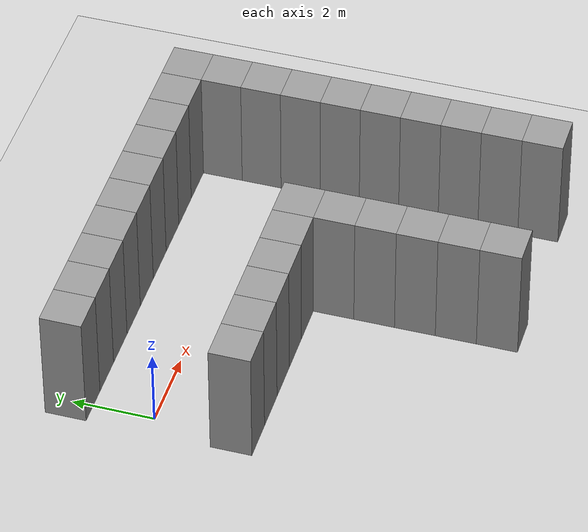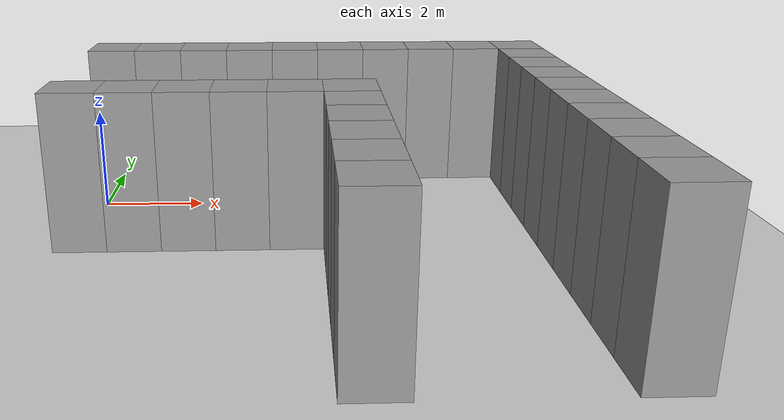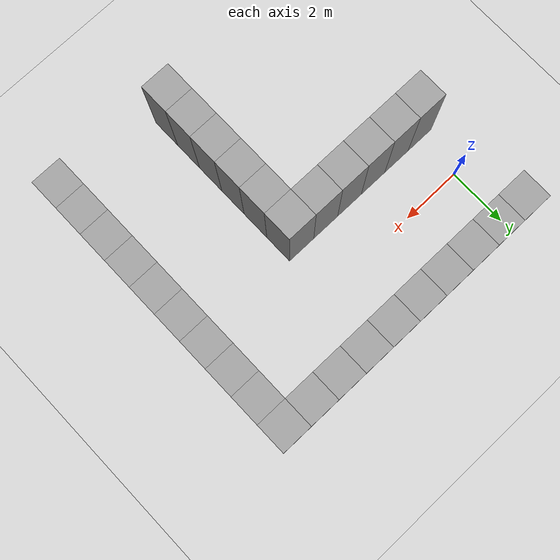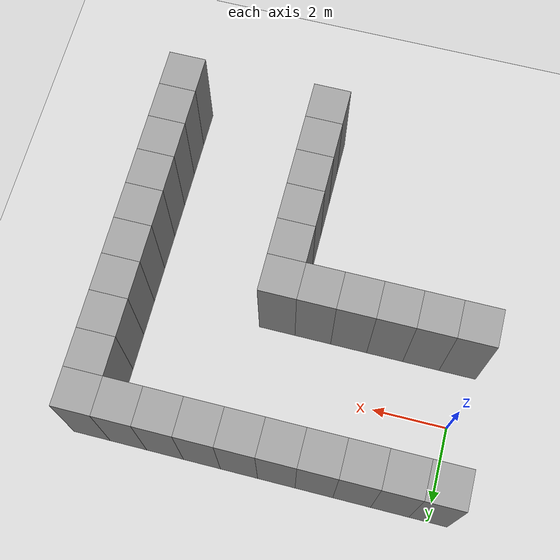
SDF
<sdf version="1.4">
 <world name="default">
  <light name="sun" type="directional">
   <pose>0 0 10 0 -0 0</pose>
   <diffuse>0.8 0.8 0.8 1</diffuse>
   <specular>0.2 0.2 0.2 1</specular>
   <attenuation>
    <range>1000</range>
    <constant>0.9</constant>
    <linear>0.01</linear>
    <quadratic>0.001</quadratic>
   </attenuation>
   <direction>-0 0 -1</direction>
  </light>
  <physics type="ode">
   <ode>
    <solver><type>quick</type><iters>1000</iters><sor>1.3</sor></solver>
    <constraints>
     <cfm>0</cfm>
     <erp>0.2</erp>
     <contact_max_correcting_vel>100</contact_max_correcting_vel>
     <contact_surface_layer>0.001</contact_surface_layer>
    </constraints>
   </ode>
   <max_step_size>0.01</max_step_size>
   <real_time_factor>1</real_time_factor>
   <real_time_update_rate>100</real_time_update_rate>
   <gravity>0 0 -9.8</gravity>
  </physics>
  <scene><ambient>0.4 0.4 0.4 1</ambient><background>0.7 0.7 0.7 1</background><shadows>1</shadows></scene>
  <spherical_coordinates>
   <surface_model>EARTH_WGS84</surface_model>
   <latitude_deg>0</latitude_deg>
   <longitude_deg>0</longitude_deg>
   <elevation>0</elevation>
   <heading_deg>0</heading_deg>
  </spherical_coordinates>
  <model name="ground_plane">
   <static>1</static>
   <link name="link">
    <collision name="collision">
     <geometry><plane><normal>0 0 1</normal><size>100 100</size></plane></geometry>
     <surface><friction><ode><mu>100</mu><mu2>50</mu2></ode></friction></surface>
    </collision>
    <visual name="visual">
     <cast_shadows>0</cast_shadows>
     <geometry><plane><normal>0 0 1</normal><size>100 100</size></plane></geometry>
     <material>
      <script><uri>file://media/materials/scripts/gazebo.material</uri><name>Gazebo/Grey</name></script>
     </material>
    </visual>
    <velocity_decay><linear>0</linear><angular>0</angular></velocity_decay>
   </link>
  </model>
  <model name="grey_box_0">
   <static>1</static>
   <link name="link">
    <pose>0 0 1.5 0 -0 0</pose>
    <collision name="collision"><geometry><box><size>1 1 3</size></box></geometry></collision>
    <visual name="visual">
     <cast_shadows>0</cast_shadows>
     <geometry><box><size>1 1 3</size></box></geometry>
     <material>
      <script>
       <uri>model://grey_box/materials/scripts</uri>
       <uri>model://grey_box/materials/textures</uri>
       <name>vrc/grey_box</name>
      </script>
     </material>
    </visual>
    <velocity_decay><linear>0</linear><angular>0</angular></velocity_decay>
   </link>
   <pose>0 2 0 0 -0 0</pose>
  </model>
  <model name="grey_box_1">
   <static>1</static>
   <link name="link">
    <pose>0 0 1.5 0 -0 0</pose>
    <collision name="collision"><geometry><box><size>1 1 3</size></box></geometry></collision>
    <visual name="visual">
     <cast_shadows>0</cast_shadows>
     <geometry><box><size>1 1 3</size></box></geometry>
     <material>
      <script>
       <uri>model://grey_box/materials/scripts</uri>
       <uri>model://grey_box/materials/textures</uri>
       <name>vrc/grey_box</name>
      </script>
     </material>
    </visual>
    <velocity_decay><linear>0</linear><angular>0</angular></velocity_decay>
   </link>
   <pose>0 -2 0 0 -0 0</pose>
  </model>
  <model name="grey_box_2">
   <static>1</static>
   <link name="link">
    <pose>0 0 1.5 0 -0 0</pose>
    <collision name="collision"><geometry><box><size>1 1 3</size></box></geometry></collision>
    <visual name="visual">
     <cast_shadows>0</cast_shadows>
     <geometry><box><size>1 1 3</size></box></geometry>
     <material>
      <script>
       <uri>model://grey_box/materials/scripts</uri>
       <uri>model://grey_box/materials/textures</uri>
       <name>vrc/grey_box</name>
      </script>
     </material>
    </visual>
    <velocity_decay><linear>0</linear><angular>0</angular></velocity_decay>
   </link>
   <pose>1 2 0 0 -0 0</pose>
  </model>
  <model name="grey_box_3">
   <static>1</static>
   <link name="link">
    <pose>0 0 1.5 0 -0 0</pose>
    <collision name="collision"><geometry><box><size>1 1 3</size></box></geometry></collision>
    <visual name="visual">
     <cast_shadows>0</cast_shadows>
     <geometry><box><size>1 1 3</size></box></geometry>
     <material>
      <script>
       <uri>model://grey_box/materials/scripts</uri>
       <uri>model://grey_box/materials/textures</uri>
       <name>vrc/grey_box</name>
      </script>
     </material>
    </visual>
    <velocity_decay><linear>0</linear><angular>0</angular></velocity_decay>
   </link>
   <pose>1 -2 0 0 -0 0</pose>
  </model>
  <model name="grey_box_4">
   <static>1</static>
   <link name="link">
    <pose>0 0 1.5 0 -0 0</pose>
    <collision name="collision"><geometry><box><size>1 1 3</size></box></geometry></collision>
    <visual name="visual">
     <cast_shadows>0</cast_shadows>
     <geometry><box><size>1 1 3</size></box></geometry>
     <material>
      <script>
       <uri>model://grey_box/materials/scripts</uri>
       <uri>model://grey_box/materials/textures</uri>
       <name>vrc/grey_box</name>
      </script>
     </material>
    </visual>
    <velocity_decay><linear>0</linear><angular>0</angular></velocity_decay>
   </link>
   <pose>2 2 0 0 -0 0</pose>
  </model>
  <model name="grey_box_5">
   <static>1</static>
   <link name="link">
    <pose>0 0 1.5 0 -0 0</pose>
    <collision name="collision"><geometry><box><size>1 1 3</size></box></geometry></collision>
    <visual name="visual">
     <cast_shadows>0</cast_shadows>
     <geometry><box><size>1 1 3</size></box></geometry>
     <material>
      <script>
       <uri>model://grey_box/materials/scripts</uri>
       <uri>model://grey_box/materials/textures</uri>
       <name>vrc/grey_box</name>
      </script>
     </material>
    </visual>
    <velocity_decay><linear>0</linear><angular>0</angular></velocity_decay>
   </link>
   <pose>2 -2 0 0 -0 0</pose>
  </model>
  <model name="grey_box_6">
   <static>1</static>
   <link name="link">
    <pose>0 0 1.5 0 -0 0</pose>
    <collision name="collision"><geometry><box><size>1 1 3</size></box></geometry></collision>
    <visual name="visual">
     <cast_shadows>0</cast_shadows>
     <geometry><box><size>1 1 3</size></box></geometry>
     <material>
      <script>
       <uri>model://grey_box/materials/scripts</uri>
       <uri>model://grey_box/materials/textures</uri>
       <name>vrc/grey_box</name>
      </script>
     </material>
    </visual>
    <velocity_decay><linear>0</linear><angular>0</angular></velocity_decay>
   </link>
   <pose>3 2 0 0 -0 0</pose>
  </model>
  <model name="grey_box_7">
   <static>1</static>
   <link name="link">
    <pose>0 0 1.5 0 -0 0</pose>
    <collision name="collision"><geometry><box><size>1 1 3</size></box></geometry></collision>
    <visual name="visual">
     <cast_shadows>0</cast_shadows>
     <geometry><box><size>1 1 3</size></box></geometry>
     <material>
      <script>
       <uri>model://grey_box/materials/scripts</uri>
       <uri>model://grey_box/materials/textures</uri>
       <name>vrc/grey_box</name>
      </script>
     </material>
    </visual>
    <velocity_decay><linear>0</linear><angular>0</angular></velocity_decay>
   </link>
   <pose>3 -2 0 0 -0 0</pose>
  </model>
  <model name="grey_box_8">
   <static>1</static>
   <link name="link">
    <pose>0 0 1.5 0 -0 0</pose>
    <collision name="collision"><geometry><box><size>1 1 3</size></box></geometry></collision>
    <visual name="visual">
     <cast_shadows>0</cast_shadows>
     <geometry><box><size>1 1 3</size></box></geometry>
     <material>
      <script>
       <uri>model://grey_box/materials/scripts</uri>
       <uri>model://grey_box/materials/textures</uri>
       <name>vrc/grey_box</name>
      </script>
     </material>
    </visual>
    <velocity_decay><linear>0</linear><angular>0</angular></velocity_decay>
   </link>
   <pose>4 -2 0 0 -0 0</pose>
  </model>
  <model name="grey_box_9">
   <static>1</static>
   <link name="link">
    <pose>0 0 1.5 0 -0 0</pose>
    <collision name="collision"><geometry><box><size>1 1 3</size></box></geometry></collision>
    <visual name="visual">
     <cast_shadows>0</cast_shadows>
     <geometry><box><size>1 1 3</size></box></geometry>
     <material>
      <script>
       <uri>model://grey_box/materials/scripts</uri>
       <uri>model://grey_box/materials/textures</uri>
       <name>vrc/grey_box</name>
      </script>
     </material>
    </visual>
    <velocity_decay><linear>0</linear><angular>0</angular></velocity_decay>
   </link>
   <pose>4 2 0 0 -0 0</pose>
  </model>
  <model name="grey_box_18">
   <static>1</static>
   <link name="link">
    <pose>0 0 1.5 0 -0 0</pose>
    <collision name="collision"><geometry><box><size>1 1 3</size></box></geometry></collision>
    <visual name="visual">
     <cast_shadows>0</cast_shadows>
     <geometry><box><size>1 1 3</size></box></geometry>
     <material>
      <script>
       <uri>model://grey_box/materials/scripts</uri>
       <uri>model://grey_box/materials/textures</uri>
       <name>vrc/grey_box</name>
      </script>
     </material>
    </visual>
    <velocity_decay><linear>0</linear><angular>0</angular></velocity_decay>
   </link>
   <pose>5 2 0 0 -0 0</pose>
  </model>
  <model name="grey_box_19">
   <static>1</static>
   <link name="link">
    <pose>0 0 1.5 0 -0 0</pose>
    <collision name="collision"><geometry><box><size>1 1 3</size></box></geometry></collision>
    <visual name="visual">
     <cast_shadows>0</cast_shadows>
     <geometry><box><size>1 1 3</size></box></geometry>
     <material>
      <script>
       <uri>model://grey_box/materials/scripts</uri>
       <uri>model://grey_box/materials/textures</uri>
       <name>vrc/grey_box</name>
      </script>
     </material>
    </visual>
    <velocity_decay><linear>0</linear><angular>0</angular></velocity_decay>
   </link>
   <pose>5 -2 0 0 -0 0</pose>
  </model>
  <model name="grey_box_20">
   <static>1</static>
   <link name="link">
    <pose>0 0 1.5 0 -0 0</pose>
    <collision name="collision"><geometry><box><size>1 1 3</size></box></geometry></collision>
    <visual name="visual">
     <cast_shadows>0</cast_shadows>
     <geometry><box><size>1 1 3</size></box></geometry>
     <material>
      <script>
       <uri>model://grey_box/materials/scripts</uri>
       <uri>model://grey_box/materials/textures</uri>
       <name>vrc/grey_box</name>
      </script>
     </material>
    </visual>
    <velocity_decay><linear>0</linear><angular>0</angular></velocity_decay>
   </link>
   <pose>6 2 0 0 -0 0</pose>
  </model>
  <model name="grey_box_22">
   <static>1</static>
   <link name="link">
    <pose>0 0 1.5 0 -0 0</pose>
    <collision name="collision"><geometry><box><size>1 1 3</size></box></geometry></collision>
    <visual name="visual">
     <cast_shadows>0</cast_shadows>
     <geometry><box><size>1 1 3</size></box></geometry>
     <material>
      <script>
       <uri>model://grey_box/materials/scripts</uri>
       <uri>model://grey_box/materials/textures</uri>
       <name>vrc/grey_box</name>
      </script>
     </material>
    </visual>
    <velocity_decay><linear>0</linear><angular>0</angular></velocity_decay>
   </link>
   <pose>7 2 0 0 -0 0</pose>
  </model>
  <model name="grey_box_24">
   <static>1</static>
   <link name="link">
    <pose>0 0 1.5 0 -0 0</pose>
    <collision name="collision"><geometry><box><size>1 1 3</size></box></geometry></collision>
    <visual name="visual">
     <cast_shadows>0</cast_shadows>
     <geometry><box><size>1 1 3</size></box></geometry>
     <material>
      <script>
       <uri>model://grey_box/materials/scripts</uri>
       <uri>model://grey_box/materials/textures</uri>
       <name>vrc/grey_box</name>
      </script>
     </material>
    </visual>
    <velocity_decay><linear>0</linear><angular>0</angular></velocity_decay>
   </link>
   <pose>8 2 0 0 -0 0</pose>
  </model>
  <model name="grey_box_26">
   <static>1</static>
   <link name="link">
    <pose>0 0 1.5 0 -0 0</pose>
    <collision name="collision"><geometry><box><size>1 1 3</size></box></geometry></collision>
    <visual name="visual">
     <cast_shadows>0</cast_shadows>
     <geometry><box><size>1 1 3</size></box></geometry>
     <material>
      <script>
       <uri>model://grey_box/materials/scripts</uri>
       <uri>model://grey_box/materials/textures</uri>
       <name>vrc/grey_box</name>
      </script>
     </material>
    </visual>
    <velocity_decay><linear>0</linear><angular>0</angular></velocity_decay>
   </link>
   <pose>9 2 0 0 -0 0</pose>
  </model>
  <model name="grey_box">
   <static>1</static>
   <link name="link">
    <pose>0 0 1.5 0 -0 0</pose>
    <collision name="collision"><geometry><box><size>1 1 3</size></box></geometry></collision>
    <visual name="visual">
     <cast_shadows>0</cast_shadows>
     <geometry><box><size>1 1 3</size></box></geometry>
     <material>
      <script>
       <uri>model://grey_box/materials/scripts</uri>
       <uri>model://grey_box/materials/textures</uri>
       <name>vrc/grey_box</name>
      </script>
     </material>
    </visual>
    <velocity_decay><linear>0</linear><angular>0</angular></velocity_decay>
   </link>
   <pose>9 1 0 0 -0 0</pose>
  </model>
  <model name="grey_box_10">
   <static>1</static>
   <link name="link">
    <pose>0 0 1.5 0 -0 0</pose>
    <collision name="collision"><geometry><box><size>1 1 3</size></box></geometry></collision>
    <visual name="visual">
     <cast_shadows>0</cast_shadows>
     <geometry><box><size>1 1 3</size></box></geometry>
     <material>
      <script>
       <uri>model://grey_box/materials/scripts</uri>
       <uri>model://grey_box/materials/textures</uri>
       <name>vrc/grey_box</name>
      </script>
     </material>
    </visual>
    <velocity_decay><linear>0</linear><angular>0</angular></velocity_decay>
   </link>
   <pose>9 0 0 0 -0 0</pose>
  </model>
  <model name="grey_box_11">
   <static>1</static>
   <link name="link">
    <pose>0 0 1.5 0 -0 0</pose>
    <collision name="collision"><geometry><box><size>1 1 3</size></box></geometry></collision>
    <visual name="visual">
     <cast_shadows>0</cast_shadows>
     <geometry><box><size>1 1 3</size></box></geometry>
     <material>
      <script>
       <uri>model://grey_box/materials/scripts</uri>
       <uri>model://grey_box/materials/textures</uri>
       <name>vrc/grey_box</name>
      </script>
     </material>
    </visual>
    <velocity_decay><linear>0</linear><angular>0</angular></velocity_decay>
   </link>
   <pose>9 -1 0 0 -0 0</pose>
  </model>
  <model name="grey_box_12">
   <static>1</static>
   <link name="link">
    <pose>0 0 1.5 0 -0 0</pose>
    <collision name="collision"><geometry><box><size>1 1 3</size></box></geometry></collision>
    <visual name="visual">
     <cast_shadows>0</cast_shadows>
     <geometry><box><size>1 1 3</size></box></geometry>
     <material>
      <script>
       <uri>model://grey_box/materials/scripts</uri>
       <uri>model://grey_box/materials/textures</uri>
       <name>vrc/grey_box</name>
      </script>
     </material>
    </visual>
    <velocity_decay><linear>0</linear><angular>0</angular></velocity_decay>
   </link>
   <pose>9 -2 0 0 -0 0</pose>
  </model>
  <model name="grey_box_13">
   <static>1</static>
   <link name="link">
    <pose>0 0 1.5 0 -0 0</pose>
    <collision name="collision"><geometry><box><size>1 1 3</size></box></geometry></collision>
    <visual name="visual">
     <cast_shadows>0</cast_shadows>
     <geometry><box><size>1 1 3</size></box></geometry>
     <material>
      <script>
       <uri>model://grey_box/materials/scripts</uri>
       <uri>model://grey_box/materials/textures</uri>
       <name>vrc/grey_box</name>
      </script>
     </material>
    </visual>
    <velocity_decay><linear>0</linear><angular>0</angular></velocity_decay>
   </link>
   <pose>9 -3 0 0 -0 0</pose>
  </model>
  <model name="grey_box_14">
   <static>1</static>
   <link name="link">
    <pose>0 0 1.5 0 -0 0</pose>
    <collision name="collision"><geometry><box><size>1 1 3</size></box></geometry></collision>
    <visual name="visual">
     <cast_shadows>0</cast_shadows>
     <geometry><box><size>1 1 3</size></box></geometry>
     <material>
      <script>
       <uri>model://grey_box/materials/scripts</uri>
       <uri>model://grey_box/materials/textures</uri>
       <name>vrc/grey_box</name>
      </script>
     </material>
    </visual>
    <velocity_decay><linear>0</linear><angular>0</angular></velocity_decay>
   </link>
   <pose>9 -4 0 0 -0 0</pose>
  </model>
  <model name="grey_box_15">
   <static>1</static>
   <link name="link">
    <pose>0 0 1.5 0 -0 0</pose>
    <collision name="collision"><geometry><box><size>1 1 3</size></box></geometry></collision>
    <visual name="visual">
     <cast_shadows>0</cast_shadows>
     <geometry><box><size>1 1 3</size></box></geometry>
     <material>
      <script>
       <uri>model://grey_box/materials/scripts</uri>
       <uri>model://grey_box/materials/textures</uri>
       <name>vrc/grey_box</name>
      </script>
     </material>
    </visual>
    <velocity_decay><linear>0</linear><angular>0</angular></velocity_decay>
   </link>
   <pose>5 -3 0 0 -0 0</pose>
  </model>
  <model name="grey_box_16">
   <static>1</static>
   <link name="link">
    <pose>0 0 1.5 0 -0 0</pose>
    <collision name="collision"><geometry><box><size>1 1 3</size></box></geometry></collision>
    <visual name="visual">
     <cast_shadows>0</cast_shadows>
     <geometry><box><size>1 1 3</size></box></geometry>
     <material>
      <script>
       <uri>model://grey_box/materials/scripts</uri>
       <uri>model://grey_box/materials/textures</uri>
       <name>vrc/grey_box</name>
      </script>
     </material>
    </visual>
    <velocity_decay><linear>0</linear><angular>0</angular></velocity_decay>
   </link>
   <pose>5 -4 0 0 -0 0</pose>
  </model>
  <model name="grey_box_17">
   <static>1</static>
   <link name="link">
    <pose>0 0 1.5 0 -0 0</pose>
    <collision name="collision"><geometry><box><size>1 1 3</size></box></geometry></collision>
    <visual name="visual">
     <cast_shadows>0</cast_shadows>
     <geometry><box><size>1 1 3</size></box></geometry>
     <material>
      <script>
       <uri>model://grey_box/materials/scripts</uri>
       <uri>model://grey_box/materials/textures</uri>
       <name>vrc/grey_box</name>
      </script>
     </material>
    </visual>
    <velocity_decay><linear>0</linear><angular>0</angular></velocity_decay>
   </link>
   <pose>9 -5 0 0 -0 0</pose>
  </model>
  <model name="grey_box_28">
   <static>1</static>
   <link name="link">
    <pose>0 0 1.5 0 -0 0</pose>
    <collision name="collision"><geometry><box><size>1 1 3</size></box></geometry></collision>
    <visual name="visual">
     <cast_shadows>0</cast_shadows>
     <geometry><box><size>1 1 3</size></box></geometry>
     <material>
      <script>
       <uri>model://grey_box/materials/scripts</uri>
       <uri>model://grey_box/materials/textures</uri>
       <name>vrc/grey_box</name>
      </script>
     </material>
    </visual>
    <velocity_decay><linear>0</linear><angular>0</angular></velocity_decay>
   </link>
   <pose>5 -5 0 0 -0 0</pose>
  </model>
  <model name="grey_box_29">
   <static>1</static>
   <link name="link">
    <pose>0 0 1.5 0 -0 0</pose>
    <collision name="collision"><geometry><box><size>1 1 3</size></box></geometry></collision>
    <visual name="visual">
     <cast_shadows>0</cast_shadows>
     <geometry><box><size>1 1 3</size></box></geometry>
     <material>
      <script>
       <uri>model://grey_box/materials/scripts</uri>
       <uri>model://grey_box/materials/textures</uri>
       <name>vrc/grey_box</name>
      </script>
     </material>
    </visual>
    <velocity_decay><linear>0</linear><angular>0</angular></velocity_decay>
   </link>
   <pose>9 -6 0 0 -0 0</pose>
  </model>
  <model name="grey_box_31">
   <static>1</static>
   <link name="link">
    <pose>0 0 1.5 0 -0 0</pose>
    <collision name="collision"><geometry><box><size>1 1 3</size></box></geometry></collision>
    <visual name="visual">
     <cast_shadows>0</cast_shadows>
     <geometry><box><size>1 1 3</size></box></geometry>
     <material>
      <script>
       <uri>model://grey_box/materials/scripts</uri>
       <uri>model://grey_box/materials/textures</uri>
       <name>vrc/grey_box</name>
      </script>
     </material>
    </visual>
    <velocity_decay><linear>0</linear><angular>0</angular></velocity_decay>
   </link>
   <pose>5 -6 0 0 -0 0</pose>
  </model>
  <model name="grey_box_32">
   <static>1</static>
   <link name="link">
    <pose>0 0 1.5 0 -0 0</pose>
    <collision name="collision"><geometry><box><size>1 1 3</size></box></geometry></collision>
    <visual name="visual">
     <cast_shadows>0</cast_shadows>
     <geometry><box><size>1 1 3</size></box></geometry>
     <material>
      <script>
       <uri>model://grey_box/materials/scripts</uri>
       <uri>model://grey_box/materials/textures</uri>
       <name>vrc/grey_box</name>
      </script>
     </material>
    </visual>
    <velocity_decay><linear>0</linear><angular>0</angular></velocity_decay>
   </link>
   <pose>9 -7 0 0 -0 0</pose>
  </model>
  <model name="grey_box_33">
   <static>1</static>
   <link name="link">
    <pose>0 0 1.5 0 -0 0</pose>
    <collision name="collision"><geometry><box><size>1 1 3</size></box></geometry></collision>
    <visual name="visual">
     <cast_shadows>0</cast_shadows>
     <geometry><box><size>1 1 3</size></box></geometry>
     <material>
      <script>
       <uri>model://grey_box/materials/scripts</uri>
       <uri>model://grey_box/materials/textures</uri>
       <name>vrc/grey_box</name>
      </script>
     </material>
    </visual>
    <velocity_decay><linear>0</linear><angular>0</angular></velocity_decay>
   </link>
   <pose>5 -7 0 0 -0 0</pose>
  </model>
 </world>
</sdf>
